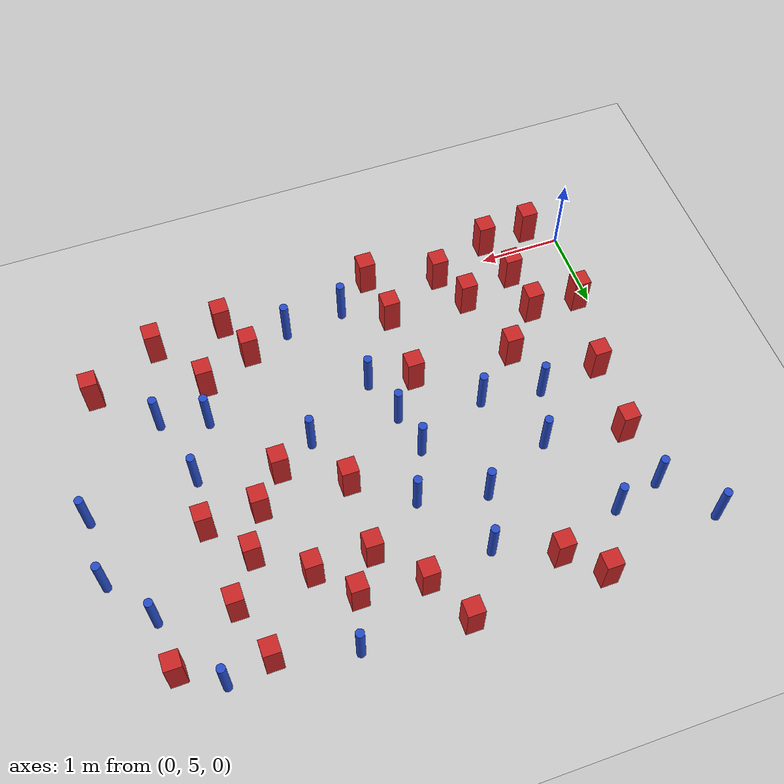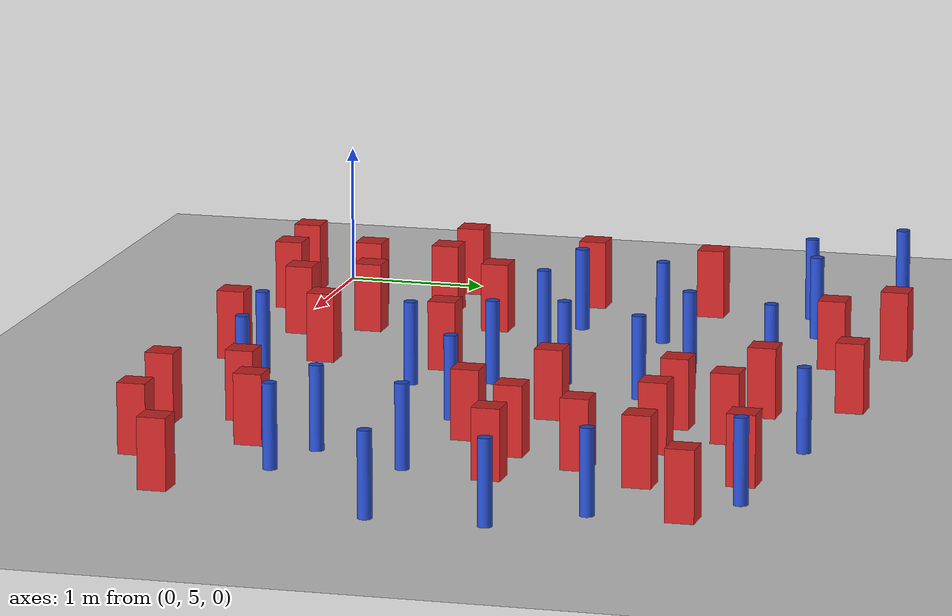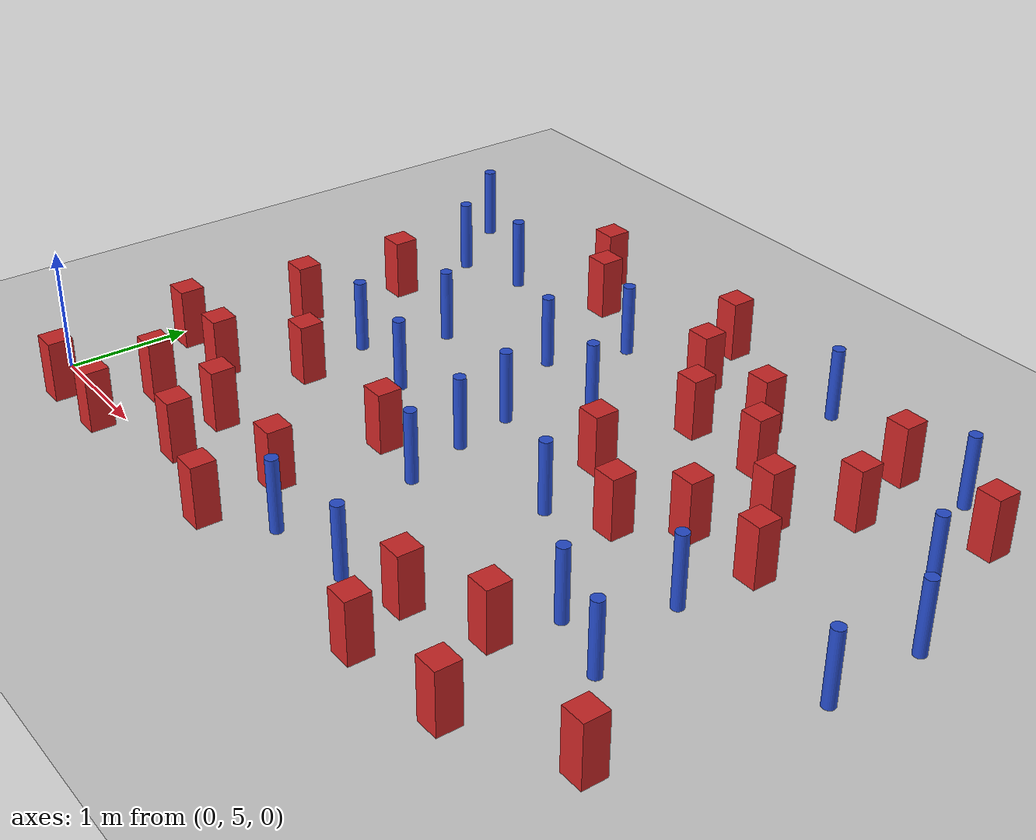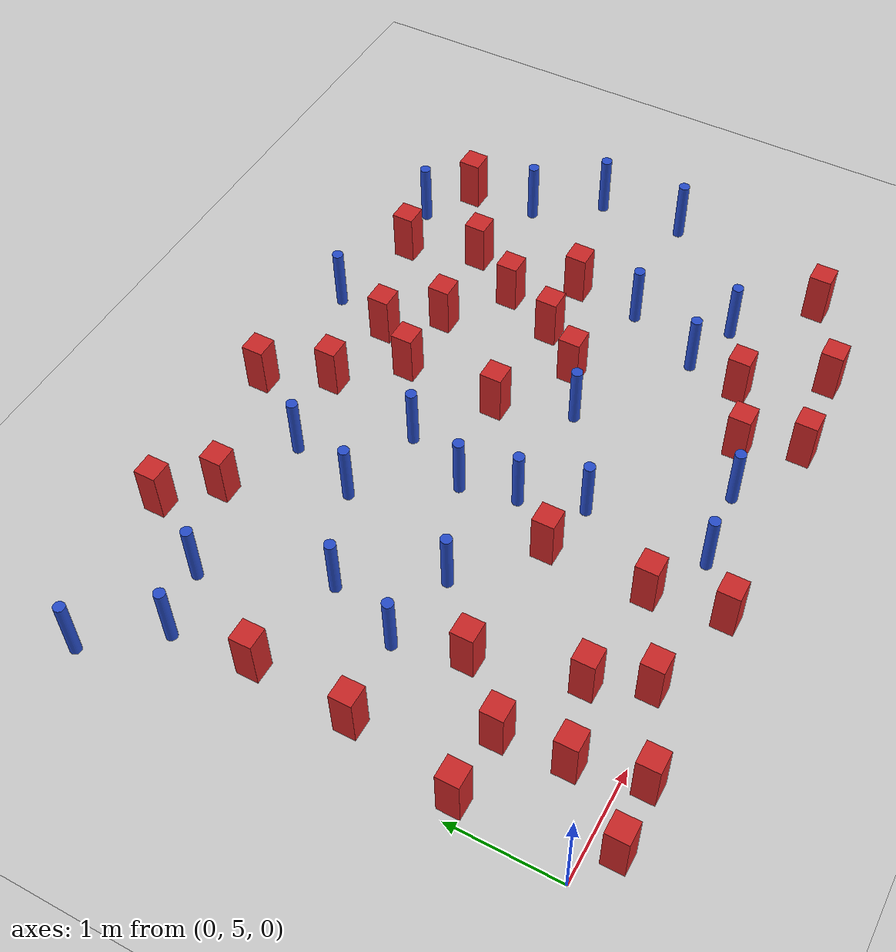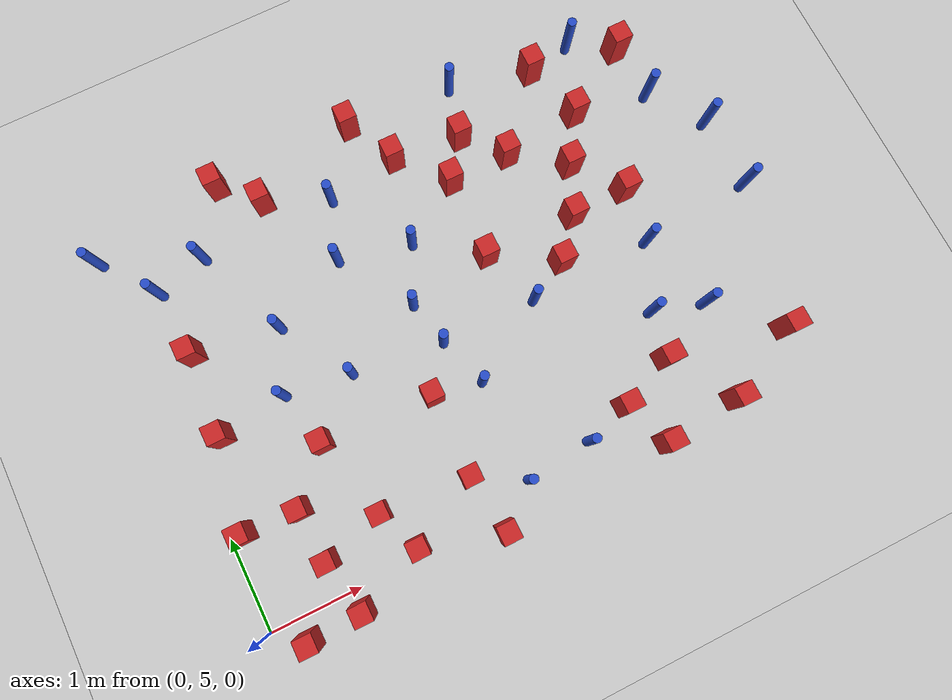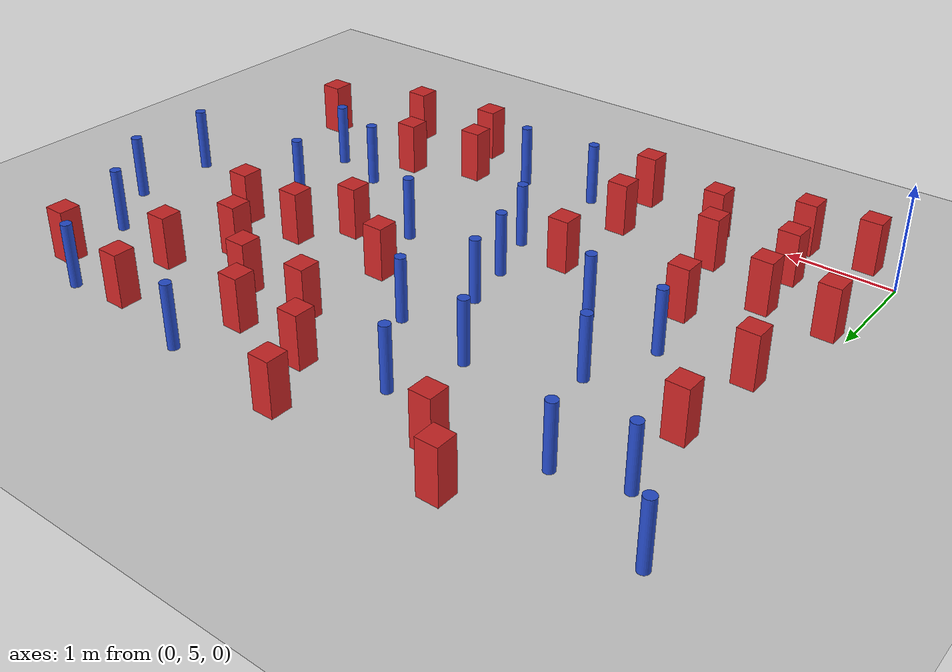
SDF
<sdf version="1.6">
 <world name="default">
  <model name="ground_plane">
   <static>1</static>
   <link name="link">
    <collision name="collision">
     <geometry><plane><normal>0 0 1</normal><size>100 100</size></plane></geometry>
     <surface><friction><ode><mu>100</mu><mu2>50</mu2></ode></friction></surface>
    </collision>
    <visual name="visual">
     <cast_shadows>0</cast_shadows>
     <geometry><plane><normal>0 0 1</normal><size>100 100</size></plane></geometry>
     <material>
      <ambient>1.0 1.0 1.0 1.0</ambient>
      <diffuse>0.8 0.8 0.8 1.0</diffuse>
      <specular>0.01 0.01 0.01 1.000000</specular>
     </material>
    </visual>
   </link>
  </model>
  <model name="square_post_obstacle6">
   <static>true</static>
   <pose>5.21742465756 8.51928732612 1.91545236811e-07 -7.35059704564e-06 1.12565212e-07 2.39332434364e-05</pose>
   <link name="link">
    <pose>0 0 0.25 0 -0 0</pose>
    <inertial>
     <mass>100</mass>
     <inertia>
      <ixx>0.166667</ixx>
      <ixy>0</ixy>
      <ixz>0</ixz>
      <iyy>0.166667</iyy>
      <iyz>0</iyz>
      <izz>0.166667</izz>
     </inertia>
    </inertial>
    <collision name="collision"><geometry><box><size>.2 .2 .5</size></box></geometry></collision>
    <visual name="visual">
     <geometry><box><size>.2 .2 .5</size></box></geometry>
     <material>
      <script><name>Gazebo/Red</name><uri>file://media/materials/scripts/gazebo.material</uri></script>
     </material>
    </visual>
   </link>
  </model>
  <model name="pole_obstacle9">
   <static>true</static>
   <pose>5.45266058337 6.02277866107 7.38925637345e-09 -8.47170692796e-08 1.24976764786e-08 -1.74513093032e-07</pose>
   <link name="link">
    <pose>0 0 0.3 0 -0 0</pose>
    <inertial>
     <mass>1</mass>
     <inertia><ixx>0.145833</ixx><ixy>0</ixy><ixz>0</ixz><iyy>0.145833</iyy><iyz>0</iyz><izz>0.125</izz></inertia>
    </inertial>
    <collision name="collision">
     <geometry><cylinder><radius>0.05</radius><length>.6</length></cylinder></geometry>
    </collision>
    <visual name="visual">
     <geometry><cylinder><radius>0.05</radius><length>.6</length></cylinder></geometry>
     <material>
      <script><name>Gazebo/Blue</name><uri>file://media/materials/scripts/gazebo.material</uri></script>
     </material>
    </visual>
   </link>
  </model>
  <model name="square_post_obstacle19">
   <static>true</static>
   <pose>1.24587258666 6.46991391476 1.91545236811e-07 -7.35059704564e-06 1.12565212e-07 2.39332434364e-05</pose>
   <link name="link">
    <pose>0 0 0.25 0 -0 0</pose>
    <inertial>
     <mass>100</mass>
     <inertia>
      <ixx>0.166667</ixx>
      <ixy>0</ixy>
      <ixz>0</ixz>
      <iyy>0.166667</iyy>
      <iyz>0</iyz>
      <izz>0.166667</izz>
     </inertia>
    </inertial>
    <collision name="collision"><geometry><box><size>.2 .2 .5</size></box></geometry></collision>
    <visual name="visual">
     <geometry><box><size>.2 .2 .5</size></box></geometry>
     <material>
      <script><name>Gazebo/Red</name><uri>file://media/materials/scripts/gazebo.material</uri></script>
     </material>
    </visual>
   </link>
  </model>
  <model name="pole_obstacle11">
   <static>true</static>
   <pose>6.04920559526 8.37096371411 7.38925637345e-09 -8.471706928e-08 1.24976765081e-08 -1.74513093015e-07</pose>
   <link name="link">
    <pose>0 0 0.3 0 -0 0</pose>
    <inertial>
     <mass>1</mass>
     <inertia><ixx>0.145833</ixx><ixy>0</ixy><ixz>0</ixz><iyy>0.145833</iyy><iyz>0</iyz><izz>0.125</izz></inertia>
    </inertial>
    <collision name="collision">
     <geometry><cylinder><radius>0.05</radius><length>.6</length></cylinder></geometry>
    </collision>
    <visual name="visual">
     <geometry><cylinder><radius>0.05</radius><length>.6</length></cylinder></geometry>
     <material>
      <script><name>Gazebo/Blue</name><uri>file://media/materials/scripts/gazebo.material</uri></script>
     </material>
    </visual>
   </link>
  </model>
  <model name="pole_obstacle13">
   <static>true</static>
   <pose>2.98266285605 7.96069284525 7.38925637345e-09 -8.47170692799e-08 1.24976765031e-08 -1.7451309302e-07</pose>
   <link name="link">
    <pose>0 0 0.3 0 -0 0</pose>
    <inertial>
     <mass>1</mass>
     <inertia><ixx>0.145833</ixx><ixy>0</ixy><ixz>0</ixz><iyy>0.145833</iyy><iyz>0</iyz><izz>0.125</izz></inertia>
    </inertial>
    <collision name="collision">
     <geometry><cylinder><radius>0.05</radius><length>.6</length></cylinder></geometry>
    </collision>
    <visual name="visual">
     <geometry><cylinder><radius>0.05</radius><length>.6</length></cylinder></geometry>
     <material>
      <script><name>Gazebo/Blue</name><uri>file://media/materials/scripts/gazebo.material</uri></script>
     </material>
    </visual>
   </link>
  </model>
  <model name="pole_obstacle31">
   <static>true</static>
   <pose>0.921952551334 8.78460044344 7.38925637345e-09 -8.47170692797e-08 1.249767648e-08 -1.74513093032e-07</pose>
   <link name="link">
    <pose>0 0 0.3 0 -0 0</pose>
    <inertial>
     <mass>1</mass>
     <inertia><ixx>0.145833</ixx><ixy>0</ixy><ixz>0</ixz><iyy>0.145833</iyy><iyz>0</iyz><izz>0.125</izz></inertia>
    </inertial>
    <collision name="collision">
     <geometry><cylinder><radius>0.05</radius><length>.6</length></cylinder></geometry>
    </collision>
    <visual name="visual">
     <geometry><cylinder><radius>0.05</radius><length>.6</length></cylinder></geometry>
     <material>
      <script><name>Gazebo/Blue</name><uri>file://media/materials/scripts/gazebo.material</uri></script>
     </material>
    </visual>
   </link>
  </model>
  <model name="square_post_obstacle35">
   <static>true</static>
   <pose>0.932343342051 4.80444058875 1.91545236811e-07 -7.35059704564e-06 1.12565212e-07 2.39332434364e-05</pose>
   <link name="link">
    <pose>0 0 0.25 0 -0 0</pose>
    <inertial>
     <mass>100</mass>
     <inertia>
      <ixx>0.166667</ixx>
      <ixy>0</ixy>
      <ixz>0</ixz>
      <iyy>0.166667</iyy>
      <iyz>0</iyz>
      <izz>0.166667</izz>
     </inertia>
    </inertial>
    <collision name="collision"><geometry><box><size>.2 .2 .5</size></box></geometry></collision>
    <visual name="visual">
     <geometry><box><size>.2 .2 .5</size></box></geometry>
     <material>
      <script><name>Gazebo/Red</name><uri>file://media/materials/scripts/gazebo.material</uri></script>
     </material>
    </visual>
   </link>
  </model>
  <model name="square_post_obstacle39">
   <static>true</static>
   <pose>0.811670043356 5.38583962947 1.91545236811e-07 -7.35059704564e-06 1.12565212e-07 2.39332434364e-05</pose>
   <link name="link">
    <pose>0 0 0.25 0 -0 0</pose>
    <inertial>
     <mass>100</mass>
     <inertia>
      <ixx>0.166667</ixx>
      <ixy>0</ixy>
      <ixz>0</ixz>
      <iyy>0.166667</iyy>
      <iyz>0</iyz>
      <izz>0.166667</izz>
     </inertia>
    </inertial>
    <collision name="collision"><geometry><box><size>.2 .2 .5</size></box></geometry></collision>
    <visual name="visual">
     <geometry><box><size>.2 .2 .5</size></box></geometry>
     <material>
      <script><name>Gazebo/Red</name><uri>file://media/materials/scripts/gazebo.material</uri></script>
     </material>
    </visual>
   </link>
  </model>
  <model name="pole_obstacle45">
   <static>true</static>
   <pose>2.19322060355 8.13696494177 7.38925637345e-09 -8.47170692793e-08 1.24976764408e-08 -1.74513093041e-07</pose>
   <link name="link">
    <pose>0 0 0.3 0 -0 0</pose>
    <inertial>
     <mass>1</mass>
     <inertia><ixx>0.145833</ixx><ixy>0</ixy><ixz>0</ixz><iyy>0.145833</iyy><iyz>0</iyz><izz>0.125</izz></inertia>
    </inertial>
    <collision name="collision">
     <geometry><cylinder><radius>0.05</radius><length>.6</length></cylinder></geometry>
    </collision>
    <visual name="visual">
     <geometry><cylinder><radius>0.05</radius><length>.6</length></cylinder></geometry>
     <material>
      <script><name>Gazebo/Blue</name><uri>file://media/materials/scripts/gazebo.material</uri></script>
     </material>
    </visual>
   </link>
  </model>
  <model name="square_post_obstacle43">
   <static>true</static>
   <pose>3.20730498654 8.91222642943 1.91545236811e-07 -7.35059704564e-06 1.12565212e-07 2.39332434364e-05</pose>
   <link name="link">
    <pose>0 0 0.25 0 -0 0</pose>
    <inertial>
     <mass>100</mass>
     <inertia>
      <ixx>0.166667</ixx>
      <ixy>0</ixy>
      <ixz>0</ixz>
      <iyy>0.166667</iyy>
      <iyz>0</iyz>
      <izz>0.166667</izz>
     </inertia>
    </inertial>
    <collision name="collision"><geometry><box><size>.2 .2 .5</size></box></geometry></collision>
    <visual name="visual">
     <geometry><box><size>.2 .2 .5</size></box></geometry>
     <material>
      <script><name>Gazebo/Red</name><uri>file://media/materials/scripts/gazebo.material</uri></script>
     </material>
    </visual>
   </link>
  </model>
  <model name="pole_obstacle46">
   <static>true</static>
   <pose>0.356049093013 8.62718613816 7.38925637345e-09 -8.47170692796e-08 1.24976764724e-08 -1.74513093036e-07</pose>
   <link name="link">
    <pose>0 0 0.3 0 -0 0</pose>
    <inertial>
     <mass>1</mass>
     <inertia><ixx>0.145833</ixx><ixy>0</ixy><ixz>0</ixz><iyy>0.145833</iyy><iyz>0</iyz><izz>0.125</izz></inertia>
    </inertial>
    <collision name="collision">
     <geometry><cylinder><radius>0.05</radius><length>.6</length></cylinder></geometry>
    </collision>
    <visual name="visual">
     <geometry><cylinder><radius>0.05</radius><length>.6</length></cylinder></geometry>
     <material>
      <script><name>Gazebo/Blue</name><uri>file://media/materials/scripts/gazebo.material</uri></script>
     </material>
    </visual>
   </link>
  </model>
  <model name="square_post_obstacle53">
   <static>true</static>
   <pose>5.25342830384 5.01240956887 1.91545236811e-07 -7.35059704564e-06 1.12565212e-07 2.39332434364e-05</pose>
   <link name="link">
    <pose>0 0 0.25 0 -0 0</pose>
    <inertial>
     <mass>100</mass>
     <inertia>
      <ixx>0.166667</ixx>
      <ixy>0</ixy>
      <ixz>0</ixz>
      <iyy>0.166667</iyy>
      <iyz>0</iyz>
      <izz>0.166667</izz>
     </inertia>
    </inertial>
    <collision name="collision"><geometry><box><size>.2 .2 .5</size></box></geometry></collision>
    <visual name="visual">
     <geometry><box><size>.2 .2 .5</size></box></geometry>
     <material>
      <script><name>Gazebo/Red</name><uri>file://media/materials/scripts/gazebo.material</uri></script>
     </material>
    </visual>
   </link>
  </model>
  <model name="square_post_obstacle67">
   <static>true</static>
   <pose>4.65647286922 7.48650391348 1.91545236811e-07 -7.35059704564e-06 1.12565212e-07 2.39332434364e-05</pose>
   <link name="link">
    <pose>0 0 0.25 0 -0 0</pose>
    <inertial>
     <mass>100</mass>
     <inertia>
      <ixx>0.166667</ixx>
      <ixy>0</ixy>
      <ixz>0</ixz>
      <iyy>0.166667</iyy>
      <iyz>0</iyz>
      <izz>0.166667</izz>
     </inertia>
    </inertial>
    <collision name="collision"><geometry><box><size>.2 .2 .5</size></box></geometry></collision>
    <visual name="visual">
     <geometry><box><size>.2 .2 .5</size></box></geometry>
     <material>
      <script><name>Gazebo/Red</name><uri>file://media/materials/scripts/gazebo.material</uri></script>
     </material>
    </visual>
   </link>
  </model>
  <model name="pole_obstacle66">
   <static>true</static>
   <pose>5.53407594022 9.28156035847 7.38925637345e-09 -8.471706928e-08 1.24976765081e-08 -1.74513093015e-07</pose>
   <link name="link">
    <pose>0 0 0.3 0 -0 0</pose>
    <inertial>
     <mass>1</mass>
     <inertia><ixx>0.145833</ixx><ixy>0</ixy><ixz>0</ixz><iyy>0.145833</iyy><iyz>0</iyz><izz>0.125</izz></inertia>
    </inertial>
    <collision name="collision">
     <geometry><cylinder><radius>0.05</radius><length>.6</length></cylinder></geometry>
    </collision>
    <visual name="visual">
     <geometry><cylinder><radius>0.05</radius><length>.6</length></cylinder></geometry>
     <material>
      <script><name>Gazebo/Blue</name><uri>file://media/materials/scripts/gazebo.material</uri></script>
     </material>
    </visual>
   </link>
  </model>
  <model name="square_post_obstacle70">
   <static>true</static>
   <pose>3.62685417496 7.49984101812 1.91545236811e-07 -7.35059704564e-06 1.12565212e-07 2.39332434364e-05</pose>
   <link name="link">
    <pose>0 0 0.25 0 -0 0</pose>
    <inertial>
     <mass>100</mass>
     <inertia>
      <ixx>0.166667</ixx>
      <ixy>0</ixy>
      <ixz>0</ixz>
      <iyy>0.166667</iyy>
      <iyz>0</iyz>
      <izz>0.166667</izz>
     </inertia>
    </inertial>
    <collision name="collision"><geometry><box><size>.2 .2 .5</size></box></geometry></collision>
    <visual name="visual">
     <geometry><box><size>.2 .2 .5</size></box></geometry>
     <material>
      <script><name>Gazebo/Red</name><uri>file://media/materials/scripts/gazebo.material</uri></script>
     </material>
    </visual>
   </link>
  </model>
  <model name="pole_obstacle72">
   <static>true</static>
   <pose>2.41584969606 8.78155660284 7.38925637345e-09 -8.47170692793e-08 1.24976764408e-08 -1.74513093041e-07</pose>
   <link name="link">
    <pose>0 0 0.3 0 -0 0</pose>
    <inertial>
     <mass>1</mass>
     <inertia><ixx>0.145833</ixx><ixy>0</ixy><ixz>0</ixz><iyy>0.145833</iyy><iyz>0</iyz><izz>0.125</izz></inertia>
    </inertial>
    <collision name="collision">
     <geometry><cylinder><radius>0.05</radius><length>.6</length></cylinder></geometry>
    </collision>
    <visual name="visual">
     <geometry><cylinder><radius>0.05</radius><length>.6</length></cylinder></geometry>
     <material>
      <script><name>Gazebo/Blue</name><uri>file://media/materials/scripts/gazebo.material</uri></script>
     </material>
    </visual>
   </link>
  </model>
  <model name="square_post_obstacle80">
   <static>true</static>
   <pose>3.65822978068 8.40290840916 1.91545236811e-07 -7.35059704564e-06 1.12565212e-07 2.39332434364e-05</pose>
   <link name="link">
    <pose>0 0 0.25 0 -0 0</pose>
    <inertial>
     <mass>100</mass>
     <inertia>
      <ixx>0.166667</ixx>
      <ixy>0</ixy>
      <ixz>0</ixz>
      <iyy>0.166667</iyy>
      <iyz>0</iyz>
      <izz>0.166667</izz>
     </inertia>
    </inertial>
    <collision name="collision"><geometry><box><size>.2 .2 .5</size></box></geometry></collision>
    <visual name="visual">
     <geometry><box><size>.2 .2 .5</size></box></geometry>
     <material>
      <script><name>Gazebo/Red</name><uri>file://media/materials/scripts/gazebo.material</uri></script>
     </material>
    </visual>
   </link>
  </model>
  <model name="square_post_obstacle83">
   <static>true</static>
   <pose>2.53473564629 4.85752258692 1.91545236811e-07 -7.35059704564e-06 1.12565212e-07 2.39332434364e-05</pose>
   <link name="link">
    <pose>0 0 0.25 0 -0 0</pose>
    <inertial>
     <mass>100</mass>
     <inertia>
      <ixx>0.166667</ixx>
      <ixy>0</ixy>
      <ixz>0</ixz>
      <iyy>0.166667</iyy>
      <iyz>0</iyz>
      <izz>0.166667</izz>
     </inertia>
    </inertial>
    <collision name="collision"><geometry><box><size>.2 .2 .5</size></box></geometry></collision>
    <visual name="visual">
     <geometry><box><size>.2 .2 .5</size></box></geometry>
     <material>
      <script><name>Gazebo/Red</name><uri>file://media/materials/scripts/gazebo.material</uri></script>
     </material>
    </visual>
   </link>
  </model>
  <model name="pole_obstacle100">
   <static>true</static>
   <pose>3.86353435308 6.84189695528 7.38925637345e-09 -8.47170692798e-08 1.24976765033e-08 -1.74513093019e-07</pose>
   <link name="link">
    <pose>0 0 0.3 0 -0 0</pose>
    <inertial>
     <mass>1</mass>
     <inertia><ixx>0.145833</ixx><ixy>0</ixy><ixz>0</ixz><iyy>0.145833</iyy><iyz>0</iyz><izz>0.125</izz></inertia>
    </inertial>
    <collision name="collision">
     <geometry><cylinder><radius>0.05</radius><length>.6</length></cylinder></geometry>
    </collision>
    <visual name="visual">
     <geometry><cylinder><radius>0.05</radius><length>.6</length></cylinder></geometry>
     <material>
      <script><name>Gazebo/Blue</name><uri>file://media/materials/scripts/gazebo.material</uri></script>
     </material>
    </visual>
   </link>
  </model>
  <model name="square_post_obstacle90">
   <static>true</static>
   <pose>4.19851552482 5.4453546072 1.91545236811e-07 -7.35059704564e-06 1.12565212e-07 2.39332434364e-05</pose>
   <link name="link">
    <pose>0 0 0.25 0 -0 0</pose>
    <inertial>
     <mass>100</mass>
     <inertia>
      <ixx>0.166667</ixx>
      <ixy>0</ixy>
      <ixz>0</ixz>
      <iyy>0.166667</iyy>
      <iyz>0</iyz>
      <izz>0.166667</izz>
     </inertia>
    </inertial>
    <collision name="collision"><geometry><box><size>.2 .2 .5</size></box></geometry></collision>
    <visual name="visual">
     <geometry><box><size>.2 .2 .5</size></box></geometry>
     <material>
      <script><name>Gazebo/Red</name><uri>file://media/materials/scripts/gazebo.material</uri></script>
     </material>
    </visual>
   </link>
  </model>
  <model name="pole_obstacle102">
   <static>true</static>
   <pose>3.68926532273 5.28187591981 7.38925637345e-09 -8.47170692798e-08 1.24976765033e-08 -1.74513093019e-07</pose>
   <link name="link">
    <pose>0 0 0.3 0 -0 0</pose>
    <inertial>
     <mass>1</mass>
     <inertia><ixx>0.145833</ixx><ixy>0</ixy><ixz>0</ixz><iyy>0.145833</iyy><iyz>0</iyz><izz>0.125</izz></inertia>
    </inertial>
    <collision name="collision">
     <geometry><cylinder><radius>0.05</radius><length>.6</length></cylinder></geometry>
    </collision>
    <visual name="visual">
     <geometry><cylinder><radius>0.05</radius><length>.6</length></cylinder></geometry>
     <material>
      <script><name>Gazebo/Blue</name><uri>file://media/materials/scripts/gazebo.material</uri></script>
     </material>
    </visual>
   </link>
  </model>
  <model name="square_post_obstacle91">
   <static>true</static>
   <pose>1.74031017747 9.08899394264 1.91545236811e-07 -7.35059704564e-06 1.12565212e-07 2.39332434364e-05</pose>
   <link name="link">
    <pose>0 0 0.25 0 -0 0</pose>
    <inertial>
     <mass>100</mass>
     <inertia>
      <ixx>0.166667</ixx>
      <ixy>0</ixy>
      <ixz>0</ixz>
      <iyy>0.166667</iyy>
      <iyz>0</iyz>
      <izz>0.166667</izz>
     </inertia>
    </inertial>
    <collision name="collision"><geometry><box><size>.2 .2 .5</size></box></geometry></collision>
    <visual name="visual">
     <geometry><box><size>.2 .2 .5</size></box></geometry>
     <material>
      <script><name>Gazebo/Red</name><uri>file://media/materials/scripts/gazebo.material</uri></script>
     </material>
    </visual>
   </link>
  </model>
  <model name="pole_obstacle103">
   <static>true</static>
   <pose>1.34752973269 7.73724335766 7.38925637345e-09 -8.47170692799e-08 1.24976765033e-08 -1.74513093018e-07</pose>
   <link name="link">
    <pose>0 0 0.3 0 -0 0</pose>
    <inertial>
     <mass>1</mass>
     <inertia><ixx>0.145833</ixx><ixy>0</ixy><ixz>0</ixz><iyy>0.145833</iyy><iyz>0</iyz><izz>0.125</izz></inertia>
    </inertial>
    <collision name="collision">
     <geometry><cylinder><radius>0.05</radius><length>.6</length></cylinder></geometry>
    </collision>
    <visual name="visual">
     <geometry><cylinder><radius>0.05</radius><length>.6</length></cylinder></geometry>
     <material>
      <script><name>Gazebo/Blue</name><uri>file://media/materials/scripts/gazebo.material</uri></script>
     </material>
    </visual>
   </link>
  </model>
  <model name="pole_obstacle109">
   <static>true</static>
   <pose>6.47011466461 7.79636129287 7.38925637345e-09 -8.47170692796e-08 1.24976764786e-08 -1.74513093032e-07</pose>
   <link name="link">
    <pose>0 0 0.3 0 -0 0</pose>
    <inertial>
     <mass>1</mass>
     <inertia><ixx>0.145833</ixx><ixy>0</ixy><ixz>0</ixz><iyy>0.145833</iyy><iyz>0</iyz><izz>0.125</izz></inertia>
    </inertial>
    <collision name="collision">
     <geometry><cylinder><radius>0.05</radius><length>.6</length></cylinder></geometry>
    </collision>
    <visual name="visual">
     <geometry><cylinder><radius>0.05</radius><length>.6</length></cylinder></geometry>
     <material>
      <script><name>Gazebo/Blue</name><uri>file://media/materials/scripts/gazebo.material</uri></script>
     </material>
    </visual>
   </link>
  </model>
  <model name="square_post_obstacle97">
   <static>true</static>
   <pose>5.28961861724 7.50215609414 1.91545236811e-07 -7.35059704564e-06 1.12565212e-07 2.39332434364e-05</pose>
   <link name="link">
    <pose>0 0 0.25 0 -0 0</pose>
    <inertial>
     <mass>100</mass>
     <inertia>
      <ixx>0.166667</ixx>
      <ixy>0</ixy>
      <ixz>0</ixz>
      <iyy>0.166667</iyy>
      <iyz>0</iyz>
      <izz>0.166667</izz>
     </inertia>
    </inertial>
    <collision name="collision"><geometry><box><size>.2 .2 .5</size></box></geometry></collision>
    <visual name="visual">
     <geometry><box><size>.2 .2 .5</size></box></geometry>
     <material>
      <script><name>Gazebo/Red</name><uri>file://media/materials/scripts/gazebo.material</uri></script>
     </material>
    </visual>
   </link>
  </model>
  <model name="square_post_obstacle100">
   <static>true</static>
   <pose>4.80810272939 5.69579148849 1.91545236811e-07 -7.35059704564e-06 1.12565212e-07 2.39332434364e-05</pose>
   <link name="link">
    <pose>0 0 0.25 0 -0 0</pose>
    <inertial>
     <mass>100</mass>
     <inertia>
      <ixx>0.166667</ixx>
      <ixy>0</ixy>
      <ixz>0</ixz>
      <iyy>0.166667</iyy>
      <iyz>0</iyz>
      <izz>0.166667</izz>
     </inertia>
    </inertial>
    <collision name="collision"><geometry><box><size>.2 .2 .5</size></box></geometry></collision>
    <visual name="visual">
     <geometry><box><size>.2 .2 .5</size></box></geometry>
     <material>
      <script><name>Gazebo/Red</name><uri>file://media/materials/scripts/gazebo.material</uri></script>
     </material>
    </visual>
   </link>
  </model>
  <model name="square_post_obstacle109">
   <static>true</static>
   <pose>5.0157222081 9.18233464988 1.91545236811e-07 -7.35059704564e-06 1.12565212e-07 2.39332434364e-05</pose>
   <link name="link">
    <pose>0 0 0.25 0 -0 0</pose>
    <inertial>
     <mass>100</mass>
     <inertia>
      <ixx>0.166667</ixx>
      <ixy>0</ixy>
      <ixz>0</ixz>
      <iyy>0.166667</iyy>
      <iyz>0</iyz>
      <izz>0.166667</izz>
     </inertia>
    </inertial>
    <collision name="collision"><geometry><box><size>.2 .2 .5</size></box></geometry></collision>
    <visual name="visual">
     <geometry><box><size>.2 .2 .5</size></box></geometry>
     <material>
      <script><name>Gazebo/Red</name><uri>file://media/materials/scripts/gazebo.material</uri></script>
     </material>
    </visual>
   </link>
  </model>
  <model name="pole_obstacle126">
   <static>true</static>
   <pose>1.81831126659 6.97057798025 7.38925637345e-09 -8.47170692799e-08 1.24976765033e-08 -1.74513093018e-07</pose>
   <link name="link">
    <pose>0 0 0.3 0 -0 0</pose>
    <inertial>
     <mass>1</mass>
     <inertia><ixx>0.145833</ixx><ixy>0</ixy><ixz>0</ixz><iyy>0.145833</iyy><iyz>0</iyz><izz>0.125</izz></inertia>
    </inertial>
    <collision name="collision">
     <geometry><cylinder><radius>0.05</radius><length>.6</length></cylinder></geometry>
    </collision>
    <visual name="visual">
     <geometry><cylinder><radius>0.05</radius><length>.6</length></cylinder></geometry>
     <material>
      <script><name>Gazebo/Blue</name><uri>file://media/materials/scripts/gazebo.material</uri></script>
     </material>
    </visual>
   </link>
  </model>
  <model name="square_post_obstacle113">
   <static>true</static>
   <pose>0.418705222129 7.89373449354 1.91545236811e-07 -7.35059704564e-06 1.12565212e-07 2.39332434364e-05</pose>
   <link name="link">
    <pose>0 0 0.25 0 -0 0</pose>
    <inertial>
     <mass>100</mass>
     <inertia>
      <ixx>0.166667</ixx>
      <ixy>0</ixy>
      <ixz>0</ixz>
      <iyy>0.166667</iyy>
      <iyz>0</iyz>
      <izz>0.166667</izz>
     </inertia>
    </inertial>
    <collision name="collision"><geometry><box><size>.2 .2 .5</size></box></geometry></collision>
    <visual name="visual">
     <geometry><box><size>.2 .2 .5</size></box></geometry>
     <material>
      <script><name>Gazebo/Red</name><uri>file://media/materials/scripts/gazebo.material</uri></script>
     </material>
    </visual>
   </link>
  </model>
  <model name="pole_obstacle129">
   <static>true</static>
   <pose>4.90510016738 6.18668147327 7.38925637345e-09 -8.47170692796e-08 1.24976764786e-08 -1.74513093032e-07</pose>
   <link name="link">
    <pose>0 0 0.3 0 -0 0</pose>
    <inertial>
     <mass>1</mass>
     <inertia><ixx>0.145833</ixx><ixy>0</ixy><ixz>0</ixz><iyy>0.145833</iyy><iyz>0</iyz><izz>0.125</izz></inertia>
    </inertial>
    <collision name="collision">
     <geometry><cylinder><radius>0.05</radius><length>.6</length></cylinder></geometry>
    </collision>
    <visual name="visual">
     <geometry><cylinder><radius>0.05</radius><length>.6</length></cylinder></geometry>
     <material>
      <script><name>Gazebo/Blue</name><uri>file://media/materials/scripts/gazebo.material</uri></script>
     </material>
    </visual>
   </link>
  </model>
  <model name="pole_obstacle137">
   <static>true</static>
   <pose>6.48240856975 6.98809340958 7.38925637345e-09 -8.47170692796e-08 1.24976764786e-08 -1.74513093032e-07</pose>
   <link name="link">
    <pose>0 0 0.3 0 -0 0</pose>
    <inertial>
     <mass>1</mass>
     <inertia><ixx>0.145833</ixx><ixy>0</ixy><ixz>0</ixz><iyy>0.145833</iyy><iyz>0</iyz><izz>0.125</izz></inertia>
    </inertial>
    <collision name="collision">
     <geometry><cylinder><radius>0.05</radius><length>.6</length></cylinder></geometry>
    </collision>
    <visual name="visual">
     <geometry><cylinder><radius>0.05</radius><length>.6</length></cylinder></geometry>
     <material>
      <script><name>Gazebo/Blue</name><uri>file://media/materials/scripts/gazebo.material</uri></script>
     </material>
    </visual>
   </link>
  </model>
  <model name="square_post_obstacle126">
   <static>true</static>
   <pose>0.167191553709 5.99069552743 1.91545236811e-07 -7.35059704564e-06 1.12565212e-07 2.39332434364e-05</pose>
   <link name="link">
    <pose>0 0 0.25 0 -0 0</pose>
    <inertial>
     <mass>100</mass>
     <inertia>
      <ixx>0.166667</ixx>
      <ixy>0</ixy>
      <ixz>0</ixz>
      <iyy>0.166667</iyy>
      <iyz>0</iyz>
      <izz>0.166667</izz>
     </inertia>
    </inertial>
    <collision name="collision"><geometry><box><size>.2 .2 .5</size></box></geometry></collision>
    <visual name="visual">
     <geometry><box><size>.2 .2 .5</size></box></geometry>
     <material>
      <script><name>Gazebo/Red</name><uri>file://media/materials/scripts/gazebo.material</uri></script>
     </material>
    </visual>
   </link>
  </model>
  <model name="square_post_obstacle128">
   <static>true</static>
   <pose>4.31540670914 7.09013224574 1.91545236811e-07 -7.35059704564e-06 1.12565212e-07 2.39332434364e-05</pose>
   <link name="link">
    <pose>0 0 0.25 0 -0 0</pose>
    <inertial>
     <mass>100</mass>
     <inertia>
      <ixx>0.166667</ixx>
      <ixy>0</ixy>
      <ixz>0</ixz>
      <iyy>0.166667</iyy>
      <iyz>0</iyz>
      <izz>0.166667</izz>
     </inertia>
    </inertial>
    <collision name="collision"><geometry><box><size>.2 .2 .5</size></box></geometry></collision>
    <visual name="visual">
     <geometry><box><size>.2 .2 .5</size></box></geometry>
     <material>
      <script><name>Gazebo/Red</name><uri>file://media/materials/scripts/gazebo.material</uri></script>
     </material>
    </visual>
   </link>
  </model>
  <model name="square_post_obstacle134">
   <static>true</static>
   <pose>1.47288014088 5.57240512337 1.91545236811e-07 -7.35059704564e-06 1.12565212e-07 2.39332434364e-05</pose>
   <link name="link">
    <pose>0 0 0.25 0 -0 0</pose>
    <inertial>
     <mass>100</mass>
     <inertia>
      <ixx>0.166667</ixx>
      <ixy>0</ixy>
      <ixz>0</ixz>
      <iyy>0.166667</iyy>
      <iyz>0</iyz>
      <izz>0.166667</izz>
     </inertia>
    </inertial>
    <collision name="collision"><geometry><box><size>.2 .2 .5</size></box></geometry></collision>
    <visual name="visual">
     <geometry><box><size>.2 .2 .5</size></box></geometry>
     <material>
      <script><name>Gazebo/Red</name><uri>file://media/materials/scripts/gazebo.material</uri></script>
     </material>
    </visual>
   </link>
  </model>
  <model name="pole_obstacle146">
   <static>true</static>
   <pose>2.98996878192 6.30396642351 7.38925637345e-09 -8.47170692798e-08 1.24976765033e-08 -1.74513093019e-07</pose>
   <link name="link">
    <pose>0 0 0.3 0 -0 0</pose>
    <inertial>
     <mass>1</mass>
     <inertia><ixx>0.145833</ixx><ixy>0</ixy><ixz>0</ixz><iyy>0.145833</iyy><iyz>0</iyz><izz>0.125</izz></inertia>
    </inertial>
    <collision name="collision">
     <geometry><cylinder><radius>0.05</radius><length>.6</length></cylinder></geometry>
    </collision>
    <visual name="visual">
     <geometry><cylinder><radius>0.05</radius><length>.6</length></cylinder></geometry>
     <material>
      <script><name>Gazebo/Blue</name><uri>file://media/materials/scripts/gazebo.material</uri></script>
     </material>
    </visual>
   </link>
  </model>
  <model name="square_post_obstacle140">
   <static>true</static>
   <pose>0.355207045368 6.98092264177 1.91545236811e-07 -7.35059704564e-06 1.12565212e-07 2.39332434364e-05</pose>
   <link name="link">
    <pose>0 0 0.25 0 -0 0</pose>
    <inertial>
     <mass>100</mass>
     <inertia>
      <ixx>0.166667</ixx>
      <ixy>0</ixy>
      <ixz>0</ixz>
      <iyy>0.166667</iyy>
      <iyz>0</iyz>
      <izz>0.166667</izz>
     </inertia>
    </inertial>
    <collision name="collision"><geometry><box><size>.2 .2 .5</size></box></geometry></collision>
    <visual name="visual">
     <geometry><box><size>.2 .2 .5</size></box></geometry>
     <material>
      <script><name>Gazebo/Red</name><uri>file://media/materials/scripts/gazebo.material</uri></script>
     </material>
    </visual>
   </link>
  </model>
  <model name="square_post_obstacle141">
   <static>true</static>
   <pose>5.99043265837 8.99853194888 1.91545236811e-07 -7.35059704564e-06 1.12565212e-07 2.39332434364e-05</pose>
   <link name="link">
    <pose>0 0 0.25 0 -0 0</pose>
    <inertial>
     <mass>100</mass>
     <inertia>
      <ixx>0.166667</ixx>
      <ixy>0</ixy>
      <ixz>0</ixz>
      <iyy>0.166667</iyy>
      <iyz>0</iyz>
      <izz>0.166667</izz>
     </inertia>
    </inertial>
    <collision name="collision"><geometry><box><size>.2 .2 .5</size></box></geometry></collision>
    <visual name="visual">
     <geometry><box><size>.2 .2 .5</size></box></geometry>
     <material>
      <script><name>Gazebo/Red</name><uri>file://media/materials/scripts/gazebo.material</uri></script>
     </material>
    </visual>
   </link>
  </model>
  <model name="pole_obstacle154">
   <static>true</static>
   <pose>-0.0982926078794 9.21295262006 7.38925637345e-09 -8.47170692796e-08 1.24976764728e-08 -1.74513093036e-07</pose>
   <link name="link">
    <pose>0 0 0.3 0 -0 0</pose>
    <inertial>
     <mass>1</mass>
     <inertia><ixx>0.145833</ixx><ixy>0</ixy><ixz>0</ixz><iyy>0.145833</iyy><iyz>0</iyz><izz>0.125</izz></inertia>
    </inertial>
    <collision name="collision">
     <geometry><cylinder><radius>0.05</radius><length>.6</length></cylinder></geometry>
    </collision>
    <visual name="visual">
     <geometry><cylinder><radius>0.05</radius><length>.6</length></cylinder></geometry>
     <material>
      <script><name>Gazebo/Blue</name><uri>file://media/materials/scripts/gazebo.material</uri></script>
     </material>
    </visual>
   </link>
  </model>
  <model name="pole_obstacle155">
   <static>true</static>
   <pose>4.12650949679 9.39516709657 7.38925637345e-09 -8.471706928e-08 1.24976765081e-08 -1.74513093015e-07</pose>
   <link name="link">
    <pose>0 0 0.3 0 -0 0</pose>
    <inertial>
     <mass>1</mass>
     <inertia><ixx>0.145833</ixx><ixy>0</ixy><ixz>0</ixz><iyy>0.145833</iyy><iyz>0</iyz><izz>0.125</izz></inertia>
    </inertial>
    <collision name="collision">
     <geometry><cylinder><radius>0.05</radius><length>.6</length></cylinder></geometry>
    </collision>
    <visual name="visual">
     <geometry><cylinder><radius>0.05</radius><length>.6</length></cylinder></geometry>
     <material>
      <script><name>Gazebo/Blue</name><uri>file://media/materials/scripts/gazebo.material</uri></script>
     </material>
    </visual>
   </link>
  </model>
  <model name="square_post_obstacle149">
   <static>true</static>
   <pose>4.33556991299 8.41294188005 1.91545236811e-07 -7.35059704564e-06 1.12565212e-07 2.39332434364e-05</pose>
   <link name="link">
    <pose>0 0 0.25 0 -0 0</pose>
    <inertial>
     <mass>100</mass>
     <inertia>
      <ixx>0.166667</ixx>
      <ixy>0</ixy>
      <ixz>0</ixz>
      <iyy>0.166667</iyy>
      <iyz>0</iyz>
      <izz>0.166667</izz>
     </inertia>
    </inertial>
    <collision name="collision"><geometry><box><size>.2 .2 .5</size></box></geometry></collision>
    <visual name="visual">
     <geometry><box><size>.2 .2 .5</size></box></geometry>
     <material>
      <script><name>Gazebo/Red</name><uri>file://media/materials/scripts/gazebo.material</uri></script>
     </material>
    </visual>
   </link>
  </model>
  <model name="pole_obstacle160">
   <static>true</static>
   <pose>1.09585849988 7.06958642956 7.38925637345e-09 -8.47170692799e-08 1.24976765033e-08 -1.74513093018e-07</pose>
   <link name="link">
    <pose>0 0 0.3 0 -0 0</pose>
    <inertial>
     <mass>1</mass>
     <inertia><ixx>0.145833</ixx><ixy>0</ixy><ixz>0</ixz><iyy>0.145833</iyy><iyz>0</iyz><izz>0.125</izz></inertia>
    </inertial>
    <collision name="collision">
     <geometry><cylinder><radius>0.05</radius><length>.6</length></cylinder></geometry>
    </collision>
    <visual name="visual">
     <geometry><cylinder><radius>0.05</radius><length>.6</length></cylinder></geometry>
     <material>
      <script><name>Gazebo/Blue</name><uri>file://media/materials/scripts/gazebo.material</uri></script>
     </material>
    </visual>
   </link>
  </model>
  <model name="square_post_obstacle157">
   <static>true</static>
   <pose>6.09286917601 5.43090348361 1.91545236811e-07 -7.35059704564e-06 1.12565212e-07 2.39332434364e-05</pose>
   <link name="link">
    <pose>0 0 0.25 0 -0 0</pose>
    <inertial>
     <mass>100</mass>
     <inertia>
      <ixx>0.166667</ixx>
      <ixy>0</ixy>
      <ixz>0</ixz>
      <iyy>0.166667</iyy>
      <iyz>0</iyz>
      <izz>0.166667</izz>
     </inertia>
    </inertial>
    <collision name="collision"><geometry><box><size>.2 .2 .5</size></box></geometry></collision>
    <visual name="visual">
     <geometry><box><size>.2 .2 .5</size></box></geometry>
     <material>
      <script><name>Gazebo/Red</name><uri>file://media/materials/scripts/gazebo.material</uri></script>
     </material>
    </visual>
   </link>
  </model>
  <model name="pole_obstacle166">
   <static>true</static>
   <pose>2.81138690282 6.85340508336 7.38925637345e-09 -8.47170692798e-08 1.24976765033e-08 -1.74513093019e-07</pose>
   <link name="link">
    <pose>0 0 0.3 0 -0 0</pose>
    <inertial>
     <mass>1</mass>
     <inertia><ixx>0.145833</ixx><ixy>0</ixy><ixz>0</ixz><iyy>0.145833</iyy><iyz>0</iyz><izz>0.125</izz></inertia>
    </inertial>
    <collision name="collision">
     <geometry><cylinder><radius>0.05</radius><length>.6</length></cylinder></geometry>
    </collision>
    <visual name="visual">
     <geometry><cylinder><radius>0.05</radius><length>.6</length></cylinder></geometry>
     <material>
      <script><name>Gazebo/Blue</name><uri>file://media/materials/scripts/gazebo.material</uri></script>
     </material>
    </visual>
   </link>
  </model>
  <model name="square_post_obstacle160">
   <static>true</static>
   <pose>0.768343514925 5.96176599315 1.91545236811e-07 -7.35059704564e-06 1.12565212e-07 2.39332434364e-05</pose>
   <link name="link">
    <pose>0 0 0.25 0 -0 0</pose>
    <inertial>
     <mass>100</mass>
     <inertia>
      <ixx>0.166667</ixx>
      <ixy>0</ixy>
      <ixz>0</ixz>
      <iyy>0.166667</iyy>
      <iyz>0</iyz>
      <izz>0.166667</izz>
     </inertia>
    </inertial>
    <collision name="collision"><geometry><box><size>.2 .2 .5</size></box></geometry></collision>
    <visual name="visual">
     <geometry><box><size>.2 .2 .5</size></box></geometry>
     <material>
      <script><name>Gazebo/Red</name><uri>file://media/materials/scripts/gazebo.material</uri></script>
     </material>
    </visual>
   </link>
  </model>
  <model name="square_post_obstacle162">
   <static>true</static>
   <pose>3.96562691553 8.8279247297 1.91545236811e-07 -7.35059704564e-06 1.12565212e-07 2.39332434364e-05</pose>
   <link name="link">
    <pose>0 0 0.25 0 -0 0</pose>
    <inertial>
     <mass>100</mass>
     <inertia>
      <ixx>0.166667</ixx>
      <ixy>0</ixy>
      <ixz>0</ixz>
      <iyy>0.166667</iyy>
      <iyz>0</iyz>
      <izz>0.166667</izz>
     </inertia>
    </inertial>
    <collision name="collision"><geometry><box><size>.2 .2 .5</size></box></geometry></collision>
    <visual name="visual">
     <geometry><box><size>.2 .2 .5</size></box></geometry>
     <material>
      <script><name>Gazebo/Red</name><uri>file://media/materials/scripts/gazebo.material</uri></script>
     </material>
    </visual>
   </link>
  </model>
  <model name="square_post_obstacle163">
   <static>true</static>
   <pose>4.40177471112 4.93208548084 1.91545236811e-07 -7.35059704564e-06 1.12565212e-07 2.39332434364e-05</pose>
   <link name="link">
    <pose>0 0 0.25 0 -0 0</pose>
    <inertial>
     <mass>100</mass>
     <inertia>
      <ixx>0.166667</ixx>
      <ixy>0</ixy>
      <ixz>0</ixz>
      <iyy>0.166667</iyy>
      <iyz>0</iyz>
      <izz>0.166667</izz>
     </inertia>
    </inertial>
    <collision name="collision"><geometry><box><size>.2 .2 .5</size></box></geometry></collision>
    <visual name="visual">
     <geometry><box><size>.2 .2 .5</size></box></geometry>
     <material>
      <script><name>Gazebo/Red</name><uri>file://media/materials/scripts/gazebo.material</uri></script>
     </material>
    </visual>
   </link>
  </model>
  <model name="square_post_obstacle169">
   <static>true</static>
   <pose>1.36256838497 9.4660582096 1.91545236811e-07 -7.35059704564e-06 1.12565212e-07 2.39332434364e-05</pose>
   <link name="link">
    <pose>0 0 0.25 0 -0 0</pose>
    <inertial>
     <mass>100</mass>
     <inertia>
      <ixx>0.166667</ixx>
      <ixy>0</ixy>
      <ixz>0</ixz>
      <iyy>0.166667</iyy>
      <iyz>0</iyz>
      <izz>0.166667</izz>
     </inertia>
    </inertial>
    <collision name="collision"><geometry><box><size>.2 .2 .5</size></box></geometry></collision>
    <visual name="visual">
     <geometry><box><size>.2 .2 .5</size></box></geometry>
     <material>
      <script><name>Gazebo/Red</name><uri>file://media/materials/scripts/gazebo.material</uri></script>
     </material>
    </visual>
   </link>
  </model>
  <model name="pole_obstacle186">
   <static>true</static>
   <pose>2.7025118993 7.3512897266 7.38925637345e-09 -8.47170692798e-08 1.24976765033e-08 -1.74513093019e-07</pose>
   <link name="link">
    <pose>0 0 0.3 0 -0 0</pose>
    <inertial>
     <mass>1</mass>
     <inertia><ixx>0.145833</ixx><ixy>0</ixy><ixz>0</ixz><iyy>0.145833</iyy><iyz>0</iyz><izz>0.125</izz></inertia>
    </inertial>
    <collision name="collision">
     <geometry><cylinder><radius>0.05</radius><length>.6</length></cylinder></geometry>
    </collision>
    <visual name="visual">
     <geometry><cylinder><radius>0.05</radius><length>.6</length></cylinder></geometry>
     <material>
      <script><name>Gazebo/Blue</name><uri>file://media/materials/scripts/gazebo.material</uri></script>
     </material>
    </visual>
   </link>
  </model>
  <model name="square_post_obstacle175">
   <static>true</static>
   <pose>1.67717421959 5.10847634911 1.91545236811e-07 -7.35059704564e-06 1.12565212e-07 2.39332434364e-05</pose>
   <link name="link">
    <pose>0 0 0.25 0 -0 0</pose>
    <inertial>
     <mass>100</mass>
     <inertia>
      <ixx>0.166667</ixx>
      <ixy>0</ixy>
      <ixz>0</ixz>
      <iyy>0.166667</iyy>
      <iyz>0</iyz>
      <izz>0.166667</izz>
     </inertia>
    </inertial>
    <collision name="collision"><geometry><box><size>.2 .2 .5</size></box></geometry></collision>
    <visual name="visual">
     <geometry><box><size>.2 .2 .5</size></box></geometry>
     <material>
      <script><name>Gazebo/Red</name><uri>file://media/materials/scripts/gazebo.material</uri></script>
     </material>
    </visual>
   </link>
  </model>
  <model name="square_post_obstacle176">
   <static>true</static>
   <pose>2.46448811902 6.40823087195 1.91545236811e-07 -7.35059704564e-06 1.12565212e-07 2.39332434364e-05</pose>
   <link name="link">
    <pose>0 0 0.25 0 -0 0</pose>
    <inertial>
     <mass>100</mass>
     <inertia>
      <ixx>0.166667</ixx>
      <ixy>0</ixy>
      <ixz>0</ixz>
      <iyy>0.166667</iyy>
      <iyz>0</iyz>
      <izz>0.166667</izz>
     </inertia>
    </inertial>
    <collision name="collision"><geometry><box><size>.2 .2 .5</size></box></geometry></collision>
    <visual name="visual">
     <geometry><box><size>.2 .2 .5</size></box></geometry>
     <material>
      <script><name>Gazebo/Red</name><uri>file://media/materials/scripts/gazebo.material</uri></script>
     </material>
    </visual>
   </link>
  </model>
  <model name="pole_obstacle190">
   <static>true</static>
   <pose>5.23078813679 6.88260262686 7.38925637345e-09 -8.47170692796e-08 1.24976764786e-08 -1.74513093032e-07</pose>
   <link name="link">
    <pose>0 0 0.3 0 -0 0</pose>
    <inertial>
     <mass>1</mass>
     <inertia><ixx>0.145833</ixx><ixy>0</ixy><ixz>0</ixz><iyy>0.145833</iyy><iyz>0</iyz><izz>0.125</izz></inertia>
    </inertial>
    <collision name="collision">
     <geometry><cylinder><radius>0.05</radius><length>.6</length></cylinder></geometry>
    </collision>
    <visual name="visual">
     <geometry><cylinder><radius>0.05</radius><length>.6</length></cylinder></geometry>
     <material>
      <script><name>Gazebo/Blue</name><uri>file://media/materials/scripts/gazebo.material</uri></script>
     </material>
    </visual>
   </link>
  </model>
  <model name="square_post_obstacle185">
   <static>true</static>
   <pose>2.92552894666 9.47385188013 1.91545236811e-07 -7.35059704564e-06 1.12565212e-07 2.39332434364e-05</pose>
   <link name="link">
    <pose>0 0 0.25 0 -0 0</pose>
    <inertial>
     <mass>100</mass>
     <inertia>
      <ixx>0.166667</ixx>
      <ixy>0</ixy>
      <ixz>0</ixz>
      <iyy>0.166667</iyy>
      <iyz>0</iyz>
      <izz>0.166667</izz>
     </inertia>
    </inertial>
    <collision name="collision"><geometry><box><size>.2 .2 .5</size></box></geometry></collision>
    <visual name="visual">
     <geometry><box><size>.2 .2 .5</size></box></geometry>
     <material>
      <script><name>Gazebo/Red</name><uri>file://media/materials/scripts/gazebo.material</uri></script>
     </material>
    </visual>
   </link>
  </model>
  <model name="pole_obstacle199">
   <static>true</static>
   <pose>2.96438493948 5.20582258873 7.38925637345e-09 -8.47170692798e-08 1.24976765033e-08 -1.74513093019e-07</pose>
   <link name="link">
    <pose>0 0 0.3 0 -0 0</pose>
    <inertial>
     <mass>1</mass>
     <inertia><ixx>0.145833</ixx><ixy>0</ixy><ixz>0</ixz><iyy>0.145833</iyy><iyz>0</iyz><izz>0.125</izz></inertia>
    </inertial>
    <collision name="collision">
     <geometry><cylinder><radius>0.05</radius><length>.6</length></cylinder></geometry>
    </collision>
    <visual name="visual">
     <geometry><cylinder><radius>0.05</radius><length>.6</length></cylinder></geometry>
     <material>
      <script><name>Gazebo/Blue</name><uri>file://media/materials/scripts/gazebo.material</uri></script>
     </material>
    </visual>
   </link>
  </model>
  <model name="square_post_obstacle195">
   <static>true</static>
   <pose>0.349894291449 4.77417172958 1.91545236811e-07 -7.35059704564e-06 1.12565212e-07 2.39332434364e-05</pose>
   <link name="link">
    <pose>0 0 0.25 0 -0 0</pose>
    <inertial>
     <mass>100</mass>
     <inertia>
      <ixx>0.166667</ixx>
      <ixy>0</ixy>
      <ixz>0</ixz>
      <iyy>0.166667</iyy>
      <iyz>0</iyz>
      <izz>0.166667</izz>
     </inertia>
    </inertial>
    <collision name="collision"><geometry><box><size>.2 .2 .5</size></box></geometry></collision>
    <visual name="visual">
     <geometry><box><size>.2 .2 .5</size></box></geometry>
     <material>
      <script><name>Gazebo/Red</name><uri>file://media/materials/scripts/gazebo.material</uri></script>
     </material>
    </visual>
   </link>
  </model>
  <model name="square_post_obstacle196">
   <static>true</static>
   <pose>2.44468705193 5.50136829085 1.91545236811e-07 -7.35059704564e-06 1.12565212e-07 2.39332434364e-05</pose>
   <link name="link">
    <pose>0 0 0.25 0 -0 0</pose>
    <inertial>
     <mass>100</mass>
     <inertia>
      <ixx>0.166667</ixx>
      <ixy>0</ixy>
      <ixz>0</ixz>
      <iyy>0.166667</iyy>
      <iyz>0</iyz>
      <izz>0.166667</izz>
     </inertia>
    </inertial>
    <collision name="collision"><geometry><box><size>.2 .2 .5</size></box></geometry></collision>
    <visual name="visual">
     <geometry><box><size>.2 .2 .5</size></box></geometry>
     <material>
      <script><name>Gazebo/Red</name><uri>file://media/materials/scripts/gazebo.material</uri></script>
     </material>
    </visual>
   </link>
  </model>
  <model name="square_post_obstacle213">
   <static>true</static>
   <pose>4.8927922703 8.01108782283 1.91545236811e-07 -7.35059704564e-06 1.12565212e-07 2.39332434364e-05</pose>
   <link name="link">
    <pose>0 0 0.25 0 -0 0</pose>
    <inertial>
     <mass>100</mass>
     <inertia>
      <ixx>0.166667</ixx>
      <ixy>0</ixy>
      <ixz>0</ixz>
      <iyy>0.166667</iyy>
      <iyz>0</iyz>
      <izz>0.166667</izz>
     </inertia>
    </inertial>
    <collision name="collision"><geometry><box><size>.2 .2 .5</size></box></geometry></collision>
    <visual name="visual">
     <geometry><box><size>.2 .2 .5</size></box></geometry>
     <material>
      <script><name>Gazebo/Red</name><uri>file://media/materials/scripts/gazebo.material</uri></script>
     </material>
    </visual>
   </link>
  </model>
 </world>
</sdf>
